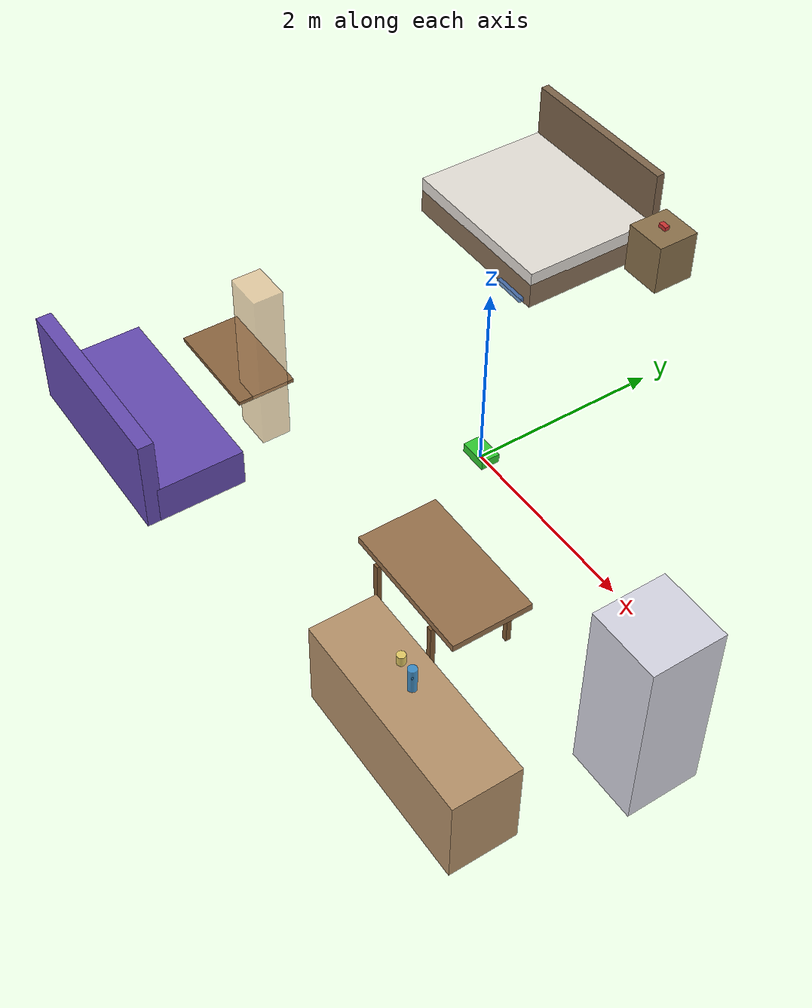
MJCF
<mujoco model="household_env_01">
  <worldbody>
    <geom name="kitchen_counter" type="box" pos="2.5 -2.5 0.45" size="1.0 0.325 0.45" rgba="0.72 0.58 0.42 1" group="2" contype="1" conaffinity="1"/>
    <geom name="refrigerator" type="box" pos="3.5 -1.0 0.9" size="0.35 0.35 0.9" rgba="0.85 0.85 0.90 1" group="2" contype="1" conaffinity="1"/>
    <geom name="dining_table_top" type="box" pos="1.5 -1.5 0.735" size="0.7 0.4 0.035" rgba="0.60 0.45 0.30 1" group="2" contype="1" conaffinity="1"/>
    <geom name="dining_table_leg1" type="box" pos="1.1 -1.1 0.35" size="0.025 0.025 0.35" rgba="0.50 0.35 0.20 1" group="2" contype="1" conaffinity="1"/>
    <geom name="dining_table_leg2" type="box" pos="1.9 -1.1 0.35" size="0.025 0.025 0.35" rgba="0.50 0.35 0.20 1" group="2" contype="1" conaffinity="1"/>
    <geom name="dining_table_leg3" type="box" pos="1.1 -1.9 0.35" size="0.025 0.025 0.35" rgba="0.50 0.35 0.20 1" group="2" contype="1" conaffinity="1"/>
    <geom name="dining_table_leg4" type="box" pos="1.9 -1.9 0.35" size="0.025 0.025 0.35" rgba="0.50 0.35 0.20 1" group="2" contype="1" conaffinity="1"/>
    <geom name="sofa_seat" type="box" pos="-2.0 -2.5 0.2" size="1.05 0.45 0.2" rgba="0.4 0.3 0.7 1" group="2" contype="1" conaffinity="1"/>
    <geom name="sofa_back" type="box" pos="-2.0 -3.0 0.5" size="1.05 0.08 0.5" rgba="0.4 0.3 0.7 1" group="2" contype="1" conaffinity="1"/>
    <geom name="coffee_table_top" type="box" pos="-2.0 -1.5 0.48" size="0.55 0.3 0.02" rgba="0.55 0.40 0.25 1" group="2" contype="1" conaffinity="1"/>
    <geom name="bed_base" type="box" pos="-2.5 2.5 0.15" size="1.0 0.8 0.15" rgba="0.55 0.45 0.35 1" group="2" contype="1" conaffinity="1"/>
    <geom name="bed_mattress" type="box" pos="-2.5 2.5 0.37" size="1.0 0.8 0.08" rgba="0.90 0.88 0.85 1" group="2" contype="1" conaffinity="1"/>
    <geom name="bed_headboard" type="box" pos="-2.5 3.35 0.6" size="1.0 0.05 0.45" rgba="0.50 0.40 0.30 1" group="2" contype="1" conaffinity="1"/>
    <geom name="nightstand" type="box" pos="-1.2 3.2 0.3" size="0.25 0.25 0.3" rgba="0.55 0.45 0.30 1" group="2" contype="1" conaffinity="1"/>
    <geom name="wall_kitchen_living" type="box" pos="0.0 -2.0 1.2" size="0.05 2.0 1.2" rgba="0.85 0.85 0.80 0.5" group="3" contype="1" conaffinity="1"/>
    <geom name="wall_living_bedroom" type="box" pos="-2.0 0.0 1.2" size="2.0 0.05 1.2" rgba="0.85 0.85 0.80 0.5" group="3" contype="1" conaffinity="1"/>
    <body name="water_bottle_01" pos="2.5 -2.5 1.125">
      <inertial mass="0.55" pos="0 0 0" diaginertia="0.001 0.001 0.0003"/>
      <geom name="bottle_body" type="cylinder" pos="0 0 0" size="0.04 0.125" rgba="0.2 0.6 0.9 0.85" contype="1" conaffinity="1"/>
      <freejoint name="bottle_joint"/>
      <site name="bottle_contact_site" size="0.01"/>
    </body>
    <body name="cup_01" pos="2.2 -2.4 0.975">
      <inertial mass="0.20" pos="0 0 0" diaginertia="0.0003 0.0003 0.0002"/>
      <geom name="cup_body" type="cylinder" pos="0 0 0" size="0.04 0.05" rgba="0.9 0.8 0.4 1.0" contype="1" conaffinity="1"/>
      <freejoint name="cup_joint"/>
    </body>
    <body name="medicine_box_01" pos="-1.2 3.2 0.63">
      <inertial mass="0.08" pos="0 0 0" diaginertia="0.00005 0.00008 0.00006"/>
      <geom name="medicine_box_col" type="box" pos="0 0 0" size="0.05 0.03 0.025" rgba="0.8 0.2 0.2 1.0" group="2" contype="1" conaffinity="1"/>
      <freejoint name="medicine_box_joint"/>
    </body>
    <body name="clothes_01" pos="-1.8 1.8 0.04">
      <inertial mass="0.35" pos="0 0 0" diaginertia="0.002 0.003 0.004"/>
      <geom name="clothes_col" type="box" pos="0 0 0" size="0.2 0.15 0.025" rgba="0.3 0.5 0.8 0.8" group="2" contype="1" conaffinity="1"/>
      <freejoint name="clothes_joint"/>
    </body>
    <body name="human_01" pos="-1.5 -1.5 0.88">
      <inertial mass="70.0" pos="0 0 0" diaginertia="5.0 4.0 1.5"/>
      <geom name="human_body" type="box" pos="0 0 0" size="0.2 0.15 0.88" rgba="0.9 0.7 0.5 0.6" group="2" contype="1" conaffinity="1"/>
      <freejoint name="human_joint"/>
    </body>
    <geom name="charging_dock" type="box" pos="0.0 0.0 0.05" size="0.15 0.1 0.05" rgba="0.2 0.8 0.2 1.0" group="2" contype="1" conaffinity="1"/>
  </worldbody>
</mujoco>
